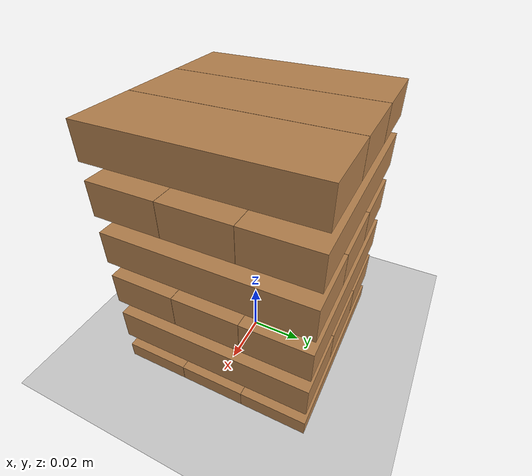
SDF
<?xml version="1.0" ?>
<sdf version="1.6">
  <world name="jenga_world">

    <!-- Physics Configuration for Stability -->
    <physics name="default_physics" type="ode">
      <max_step_size>0.001</max_step_size> <!-- Smaller step for better stability -->
      <real_time_update_rate>1000</real_time_update_rate> <!-- Smooth simulation -->
      <solver>
        <iters>200</iters> <!-- More iterations for better stacking -->
        <sor>1.3</sor>
      </solver>
    </physics>

    <!-- Ground Plane -->
    <include>
      <uri>model://ground_plane</uri>
    </include>

    <!-- Sun Light -->
    <include>
      <uri>model://sun</uri>
    </include>

    <!-- Jenga Tower Model -->
    <model name="jenga_tower">
      <static>1</static> <!-- Set to 1 if testing placement -->

      <!-- Layer 1 -->
      <model name="layer_1_block_1">
        <pose>0 -0.0251 0 0 0 0</pose>  <!-- Slightly move left -->
        <include>
          <uri>model://jenga_block</uri>
        </include>
      </model>
      <model name="layer_1_block_2">
        <pose>0 0 0 0 0 0</pose>       <!-- Center block -->
        <include>
          <uri>model://jenga_block</uri>
        </include>
      </model>
      <model name="layer_1_block_3">
        <pose>0 0.0251 0 0 0 0</pose>   <!-- Slightly move right -->
        <include>
          <uri>model://jenga_block</uri>
        </include>
      </model>
      <!-- Layer 2 -->
      <model name="layer_2_block_1">
        <pose>-0.0251 0 0.019 0 0 1.5708</pose>  <!-- Slightly move forward -->
        <include>
          <uri>model://jenga_block</uri>
        </include>
      </model>
      <model name="layer_2_block_2">
        <pose>0 0 0.019 0 0 1.5708</pose>       <!-- Center block -->
        <include>
          <uri>model://jenga_block</uri>
        </include>
      </model>
      <model name="layer_2_block_3">
        <pose>0.0251 0 0.019 0 0 1.5708</pose>   <!-- Slightly move backward -->
        <include>
          <uri>model://jenga_block</uri>
        </include>
      </model>
      <!-- Layer 3 -->
      <model name="layer_3_block_1">
        <pose>0 -0.0251 0.038 0 0 0</pose>  <!-- Slightly move left -->
        <include>
          <uri>model://jenga_block</uri>
        </include>
      </model>
      <model name="layer_3_block_2">
        <pose>0 0 0.038 0 0 0</pose>       <!-- Center block -->
        <include>
          <uri>model://jenga_block</uri>
        </include>
      </model>
      <model name="layer_3_block_3">
        <pose>0 0.0251 0.038 0 0 0</pose>   <!-- Slightly move right -->
        <include>
          <uri>model://jenga_block</uri>
        </include>
      </model>
      <!-- Layer 4 -->
      <model name="layer_4_block_1">
        <pose>-0.0251 0 0.057 0 0 1.5708</pose>  <!-- Slightly move forward -->
        <include>
          <uri>model://jenga_block</uri>
        </include>
      </model>
      <model name="layer_4_block_2">
        <pose>0 0 0.057 0 0 1.5708</pose>       <!-- Center block -->
        <include>
          <uri>model://jenga_block</uri>
        </include>
      </model>
      <model name="layer_4_block_3">
        <pose>0.0251 0 0.057 0 0 1.5708</pose>   <!-- Slightly move backward -->
        <include>
          <uri>model://jenga_block</uri>
        </include>
      </model>
      <!-- Layer 5 -->
      <model name="layer_5_block_1">
        <pose>0 -0.0251 0.076 0 0 0</pose>  <!-- Slightly move left -->
        <include>
          <uri>model://jenga_block</uri>
        </include>
      </model>
      <model name="layer_5_block_2">
        <pose>0 0 0.076 0 0 0</pose>       <!-- Center block -->
        <include>
          <uri>model://jenga_block</uri>
        </include>
      </model>
      <model name="layer_5_block_3">
        <pose>0 0.0251 0.076 0 0 0</pose>   <!-- Slightly move right -->
        <include>
          <uri>model://jenga_block</uri>
        </include>
      </model>
      <!-- Layer 6 -->
      <model name="layer_6_block_1">
        <pose>-0.0251 0 0.095 0 0 1.5708</pose>  <!-- Slightly move forward -->
        <include>
          <uri>model://jenga_block</uri>
        </include>
      </model>
      <model name="layer_6_block_2">
        <pose>0 0 0.095 0 0 1.5708</pose>       <!-- Center block -->
        <include>
          <uri>model://jenga_block</uri>
        </include>
      </model>
      <model name="layer_6_block_3">
        <pose>0.0251 0 0.095 0 0 1.5708</pose>   <!-- Slightly move backward -->
        <include>
          <uri>model://jenga_block</uri>
        </include>
      </model>

      <!-- Fixed Joints to Hold Blocks in Place Initially -->
      <joint name="layer1_joint_1" type="fixed">
        <parent>jenga_tower</parent>
        <child>layer_1_block_1</child>
      </joint>
      <joint name="layer1_joint_2" type="fixed">
        <parent>jenga_tower</parent>
        <child>layer_1_block_2</child>
      </joint>
      <joint name="layer1_joint_3" type="fixed">
        <parent>jenga_tower</parent>
        <child>layer_1_block_3</child>
      </joint>

      <joint name="layer2_joint_1" type="fixed">
        <parent>jenga_tower</parent>
        <child>layer_2_block_1</child>
      </joint>
      <joint name="layer2_joint_2" type="fixed">
        <parent>jenga_tower</parent>
        <child>layer_2_block_2</child>
      </joint>
      <joint name="layer2_joint_3" type="fixed">
        <parent>jenga_tower</parent>
        <child>layer_2_block_3</child>
      </joint>

      <joint name="layer3_joint_1" type="fixed">
        <parent>jenga_tower</parent>
        <child>layer_3_block_1</child>
      </joint>
      <joint name="layer3_joint_2" type="fixed">
        <parent>jenga_tower</parent>
        <child>layer_3_block_2</child>
      </joint>
      <joint name="layer3_joint_3" type="fixed">
        <parent>jenga_tower</parent>
        <child>layer_3_block_3</child>
      </joint>

      <joint name="layer4_joint_1" type="fixed">
        <parent>jenga_tower</parent>
        <child>layer_4_block_1</child>
      </joint>
      <joint name="layer4_joint_2" type="fixed">
        <parent>jenga_tower</parent>
        <child>layer_4_block_2</child>
      </joint>
      <joint name="layer4_joint_3" type="fixed">
        <parent>jenga_tower</parent>
        <child>layer_4_block_3</child>
      </joint>

      <joint name="layer5_joint_1" type="fixed">
        <parent>jenga_tower</parent>
        <child>layer_5_block_1</child>
      </joint>
      <joint name="layer5_joint_2" type="fixed">
        <parent>jenga_tower</parent>
        <child>layer_5_block_2</child>
      </joint>
      <joint name="layer5_joint_3" type="fixed">
        <parent>jenga_tower</parent>
        <child>layer_5_block_3</child>
      </joint>

      <joint name="layer6_joint_1" type="fixed">
        <parent>jenga_tower</parent>
        <child>layer_6_block_1</child>
      </joint>
      <joint name="layer6_joint_2" type="fixed">
        <parent>jenga_tower</parent>
        <child>layer_6_block_2</child>
      </joint>
      <joint name="layer6_joint_3" type="fixed">
        <parent>jenga_tower</parent>
        <child>layer_6_block_3</child>
      </joint>

    </model>
  </world>
</sdf>

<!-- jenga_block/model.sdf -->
<sdf version="1.6">
  <model name="jenga_block">
    <static>false</static>
    <link name="link">
      <pose>0 0 0 0 0 0</pose>

      <!-- Appearance -->
      <visual name="visual">
        <geometry>
          <box>
            <size>0.075 0.025 0.0127</size> <!-- Length x Width x Height -->
          </box>
        </geometry>
        <material>
          <script>
            <uri>file://media/materials/scripts/gazebo.material</uri>
            <name>Gazebo/Wood</name>
          </script>
          <ambient>0.7 0.5 0.3 1</ambient>
        </material>
      </visual>

      <!-- Collision for physics -->
      <collision name="collision">
        <geometry>
          <box>
            <size>0.075 0.025 0.0127</size>
          </box>
        </geometry>
        <surface>
          <friction>
            <ode>
              <mu>2.1</mu>
              <mu2>2.1</mu2>
            </ode>
          </friction>
        </surface>
      </collision>

      <!-- Mass and inertia -->
      <inertial>
        <mass>0.025</mass>
        <inertia>
          <ixx>6.61e-6</ixx>
          <iyy>1.27e-4</iyy>
          <izz>1.58e-4</izz>
        </inertia>
      </inertial>
    </link>
  </model>
</sdf>
